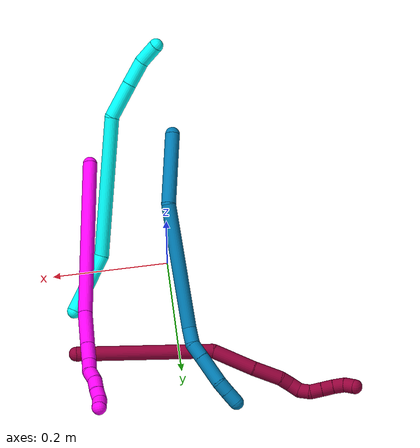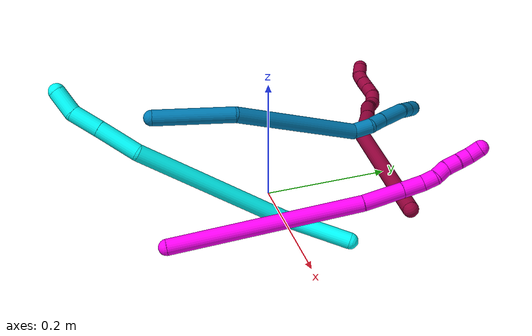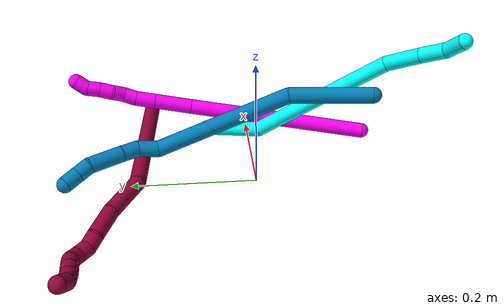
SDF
<sdf version="1.7">
 <world name="default">
  <model name="photoneo_s_sensor">
   <static>1</static>
   <pose>0 0 2 1.57079 1.57079 3.14159</pose>
   <link name="link">
    <inertial><mass>0.1</mass></inertial>
    <sensor name="sensor" type="depth">
     <update_rate>30</update_rate>
     <camera>
      <horizontal_fov>1.22</horizontal_fov>
      <image><width>1920</width><height>1200</height><format>B8G8R8</format></image>
      <clip><near>0.1</near><far>4</far></clip>
      <depth_camera><output>points</output></depth_camera>
     </camera>
     <plugin name="camera_plugin" filename="libgazebo_ros_depth_camera.so">
      <baseline>0.2</baseline>
      <alwaysOn>1</alwaysOn>
      <updateRate>0.0</updateRate>
      <cameraName>camera_ir</cameraName>
      <imageTopicName>/camera/color/image_raw</imageTopicName>
      <cameraInfoTopicName>/camera/color/camera_info</cameraInfoTopicName>
      <depthImageTopicName>/camera/depth/image_raw</depthImageTopicName>
      <depthImageCameraInfoTopicName>/camera/depth/camera_info</depthImageCameraInfoTopicName>
      <pointCloudTopicName>/camera/depth/points</pointCloudTopicName>
      <frameName>fr_optical</frameName>
      <pointCloudCutoff>0.1</pointCloudCutoff>
      <pointCloudCutoffMax>2.0</pointCloudCutoffMax>
      <distortionK1>0</distortionK1>
      <distortionK2>0</distortionK2>
      <distortionK3>0</distortionK3>
      <distortionT1>0</distortionT1>
      <distortionT2>0</distortionT2>
      <CxPrime>0</CxPrime>
      <Cx>0</Cx>
      <Cy>0</Cy>
      <focalLength>0</focalLength>
      <hackBaseline>0</hackBaseline>
     </plugin>
    </sensor>
   </link>
  </model>
  <model name="bin">
   <static>1</static>
   <link name="bottom">
    <collision name="collision-bottom">
     <pose>0 0 -0.01 0 -0 0</pose>
     <geometry><box><size>0.8 0.6 0.02</size></box></geometry>
     <surface>
      <friction><ode><mu>100</mu><mu2>100</mu2></ode></friction>
      <contact><collide_bitmask>65535</collide_bitmask></contact>
     </surface>
    </collision>
   </link>
   <link name="west_wall">
    <collision name="collision-west_wall">
     <pose>-0.41 0 0.1 0 -0 0</pose>
     <geometry><box><size>0.02 0.6 0.2</size></box></geometry>
     <surface>
      <friction><ode><mu>100</mu><mu2>100</mu2></ode></friction>
      <contact><collide_bitmask>65535</collide_bitmask></contact>
     </surface>
    </collision>
   </link>
   <link name="east_wall">
    <collision name="collision-east_wall">
     <pose>0.41 0 0.1 0 -0 0</pose>
     <geometry><box><size>0.02 0.6 0.2</size></box></geometry>
     <surface>
      <friction><ode><mu>100</mu><mu2>100</mu2></ode></friction>
      <contact><collide_bitmask>65535</collide_bitmask></contact>
     </surface>
    </collision>
   </link>
   <link name="south_wall">
    <collision name="collision-south_wall">
     <pose>0 -0.31 0.1 0 -0 0</pose>
     <geometry><box><size>0.8 0.02 0.2</size></box></geometry>
     <surface>
      <friction><ode><mu>100</mu><mu2>100</mu2></ode></friction>
      <contact><collide_bitmask>65535</collide_bitmask></contact>
     </surface>
    </collision>
   </link>
   <link name="north_wall">
    <collision name="collision-north_wall">
     <pose>0 0.31 0.1 0 -0 0</pose>
     <geometry><box><size>0.8 0.02 0.2</size></box></geometry>
     <surface>
      <friction><ode><mu>100</mu><mu2>100</mu2></ode></friction>
      <contact><collide_bitmask>65535</collide_bitmask></contact>
     </surface>
    </collision>
   </link>
  </model>
  <model name="3">
   <static>0</static>
   <link name="3">
    <collision name="collision-cylinder-e_1_1_4">
     <pose>-0.009163 -0.01016 0.052049 0.19277 -0.171099 -0.016583</pose>
     <geometry><cylinder><radius>0.0125</radius><length>0.107634</length></cylinder></geometry>
     <surface>
      <friction><ode><mu>1.16</mu><mu2>1.16</mu2><slip1>0</slip1><slip2>0</slip2></ode></friction>
      <contact><ode><kp>1e+06</kp><kd>1</kd><max_vel>0</max_vel><min_depth>0.001</min_depth></ode></contact>
     </surface>
    </collision>
    <visual name="visual-cylinder-e_1_1_4">
     <pose>-0.009163 -0.01016 0.052049 0.19277 -0.171099 -0.016583</pose>
     <geometry><cylinder><radius>0.0125</radius><length>0.107634</length></cylinder></geometry>
     <material><ambient>0.003922 1 0.996078 1</ambient></material>
    </visual>
    <collision name="collision-cylinder-e_2_4_5">
     <pose>-0.051881 -0.09475 0.195556 0.683113 -0.27723 -0.099107</pose>
     <geometry><cylinder><radius>0.0125</radius><length>0.245197</length></cylinder></geometry>
     <surface>
      <friction><ode><mu>1.16</mu><mu2>1.16</mu2><slip1>0</slip1><slip2>0</slip2></ode></friction>
      <contact><ode><kp>1e+06</kp><kd>1</kd><max_vel>0</max_vel><min_depth>0.001</min_depth></ode></contact>
     </surface>
    </collision>
    <visual name="visual-cylinder-e_2_4_5">
     <pose>-0.051881 -0.09475 0.195556 0.683113 -0.27723 -0.099107</pose>
     <geometry><cylinder><radius>0.0125</radius><length>0.245197</length></cylinder></geometry>
     <material><ambient>0.003922 1 0.996078 1</ambient></material>
    </visual>
    <collision name="collision-cylinder-e_3_5_6">
     <pose>-0.085539 -0.18046 0.316908 0.360795 -0.00326 -0.000595</pose>
     <geometry><cylinder><radius>0.0125</radius><length>0.063903</length></cylinder></geometry>
     <surface>
      <friction><ode><mu>1.16</mu><mu2>1.16</mu2><slip1>0</slip1><slip2>0</slip2></ode></friction>
      <contact><ode><kp>1e+06</kp><kd>1</kd><max_vel>0</max_vel><min_depth>0.001</min_depth></ode></contact>
     </surface>
    </collision>
    <visual name="visual-cylinder-e_3_5_6">
     <pose>-0.085539 -0.18046 0.316908 0.360795 -0.00326 -0.000595</pose>
     <geometry><cylinder><radius>0.0125</radius><length>0.063903</length></cylinder></geometry>
     <material><ambient>0.003922 1 0.996078 1</ambient></material>
    </visual>
    <collision name="collision-cylinder-e_4_6_7">
     <pose>-0.08587 -0.198993 0.367672 0.334506 -0.010249 -0.00173</pose>
     <geometry><cylinder><radius>0.0125</radius><length>0.04419</length></cylinder></geometry>
     <surface>
      <friction><ode><mu>1.16</mu><mu2>1.16</mu2><slip1>0</slip1><slip2>0</slip2></ode></friction>
      <contact><ode><kp>1e+06</kp><kd>1</kd><max_vel>0</max_vel><min_depth>0.001</min_depth></ode></contact>
     </surface>
    </collision>
    <visual name="visual-cylinder-e_4_6_7">
     <pose>-0.08587 -0.198993 0.367672 0.334506 -0.010249 -0.00173</pose>
     <geometry><cylinder><radius>0.0125</radius><length>0.04419</length></cylinder></geometry>
     <material><ambient>0.003922 1 0.996078 1</ambient></material>
    </visual>
    <collision name="collision-cylinder-e_5_7_2">
     <pose>-0.079402 -0.2144 0.404986 0.46028 0.349691 0.082727</pose>
     <geometry><cylinder><radius>0.0125</radius><length>0.039076</length></cylinder></geometry>
     <surface>
      <friction><ode><mu>1.16</mu><mu2>1.16</mu2><slip1>0</slip1><slip2>0</slip2></ode></friction>
      <contact><ode><kp>1e+06</kp><kd>1</kd><max_vel>0</max_vel><min_depth>0.001</min_depth></ode></contact>
     </surface>
    </collision>
    <visual name="visual-cylinder-e_5_7_2">
     <pose>-0.079402 -0.2144 0.404986 0.46028 0.349691 0.082727</pose>
     <geometry><cylinder><radius>0.0125</radius><length>0.039076</length></cylinder></geometry>
     <material><ambient>0.003922 1 0.996078 1</ambient></material>
    </visual>
    <collision name="collision-sphere-2">
     <pose>-0.072709 -0.222553 0.421431 0 -0 0</pose>
     <geometry><sphere><radius>0.0125</radius></sphere></geometry>
     <surface>
      <friction><ode><mu>1.16</mu><mu2>1.16</mu2><slip1>0</slip1><slip2>0</slip2></ode></friction>
      <contact><ode><kp>1e+06</kp><kd>1</kd><max_vel>0</max_vel><min_depth>0.001</min_depth></ode></contact>
     </surface>
    </collision>
    <visual name="visual-sphere-2">
     <pose>-0.072709 -0.222553 0.421431 0 -0 0</pose>
     <geometry><sphere><radius>0.0125</radius></sphere></geometry>
     <material><ambient>0.003922 1 0.996078 1</ambient></material>
    </visual>
    <collision name="collision-sphere-7">
     <pose>-0.086096 -0.206247 0.388541 0 -0 0</pose>
     <geometry><sphere><radius>0.0125</radius></sphere></geometry>
     <surface>
      <friction><ode><mu>1.16</mu><mu2>1.16</mu2><slip1>0</slip1><slip2>0</slip2></ode></friction>
      <contact><ode><kp>1e+06</kp><kd>1</kd><max_vel>0</max_vel><min_depth>0.001</min_depth></ode></contact>
     </surface>
    </collision>
    <visual name="visual-sphere-7">
     <pose>-0.086096 -0.206247 0.388541 0 -0 0</pose>
     <geometry><sphere><radius>0.0125</radius></sphere></geometry>
     <material><ambient>0.003922 1 0.996078 1</ambient></material>
    </visual>
    <collision name="collision-sphere-6">
     <pose>-0.085643 -0.191739 0.346802 0 -0 0</pose>
     <geometry><sphere><radius>0.0125</radius></sphere></geometry>
     <surface>
      <friction><ode><mu>1.16</mu><mu2>1.16</mu2><slip1>0</slip1><slip2>0</slip2></ode></friction>
      <contact><ode><kp>1e+06</kp><kd>1</kd><max_vel>0</max_vel><min_depth>0.001</min_depth></ode></contact>
     </surface>
    </collision>
    <visual name="visual-sphere-6">
     <pose>-0.085643 -0.191739 0.346802 0 -0 0</pose>
     <geometry><sphere><radius>0.0125</radius></sphere></geometry>
     <material><ambient>0.003922 1 0.996078 1</ambient></material>
    </visual>
    <collision name="collision-sphere-5">
     <pose>-0.085435 -0.169181 0.287014 0 -0 0</pose>
     <geometry><sphere><radius>0.0125</radius></sphere></geometry>
     <surface>
      <friction><ode><mu>1.16</mu><mu2>1.16</mu2><slip1>0</slip1><slip2>0</slip2></ode></friction>
      <contact><ode><kp>1e+06</kp><kd>1</kd><max_vel>0</max_vel><min_depth>0.001</min_depth></ode></contact>
     </surface>
    </collision>
    <visual name="visual-sphere-5">
     <pose>-0.085435 -0.169181 0.287014 0 -0 0</pose>
     <geometry><sphere><radius>0.0125</radius></sphere></geometry>
     <material><ambient>0.003922 1 0.996078 1</ambient></material>
    </visual>
    <collision name="collision-sphere-1">
     <geometry><sphere><radius>0.0125</radius></sphere></geometry>
     <surface>
      <friction><ode><mu>1.16</mu><mu2>1.16</mu2><slip1>0</slip1><slip2>0</slip2></ode></friction>
      <contact><ode><kp>1e+06</kp><kd>1</kd><max_vel>0</max_vel><min_depth>0.001</min_depth></ode></contact>
     </surface>
    </collision>
    <visual name="visual-sphere-1">
     <geometry><sphere><radius>0.0125</radius></sphere></geometry>
     <material><ambient>0.003922 1 0.996078 1</ambient></material>
    </visual>
    <collision name="collision-sphere-4">
     <pose>-0.018326 -0.020319 0.104098 0 -0 0</pose>
     <geometry><sphere><radius>0.0125</radius></sphere></geometry>
     <surface>
      <friction><ode><mu>1.16</mu><mu2>1.16</mu2><slip1>0</slip1><slip2>0</slip2></ode></friction>
      <contact><ode><kp>1e+06</kp><kd>1</kd><max_vel>0</max_vel><min_depth>0.001</min_depth></ode></contact>
     </surface>
    </collision>
    <visual name="visual-sphere-4">
     <pose>-0.018326 -0.020319 0.104098 0 -0 0</pose>
     <geometry><sphere><radius>0.0125</radius></sphere></geometry>
     <material><ambient>0.003922 1 0.996078 1</ambient></material>
    </visual>
    <inertial>
     <pose>-0.052142 -0.106059 0.211752 0 -0 0</pose>
     <mass>0.5</mass>
     <inertia>
      <ixx>0.001206</ixx>
      <ixy>0</ixy>
      <ixz>0</ixz>
      <iyy>0.000983</iyy>
      <iyz>0</iyz>
      <izz>0.001174</izz>
     </inertia>
    </inertial>
   </link>
   <pose>0.17103 0.07193 0.012211 -1.4574 -0.384732 2.27096</pose>
  </model>
  <model name="8">
   <static>0</static>
   <link name="8">
    <collision name="collision-cylinder-e_1_1_4">
     <pose>-0.117539 0.00147 0.003242 -0.4257 -1.54052 0.413367</pose>
     <geometry><cylinder><radius>0.0125</radius><length>0.235185</length></cylinder></geometry>
     <surface>
      <friction><ode><mu>1.16</mu><mu2>1.16</mu2><slip1>0</slip1><slip2>0</slip2></ode></friction>
      <contact><ode><kp>1e+06</kp><kd>1</kd><max_vel>0</max_vel><min_depth>0.001</min_depth></ode></contact>
     </surface>
    </collision>
    <visual name="visual-cylinder-e_1_1_4">
     <pose>-0.117539 0.00147 0.003242 -0.4257 -1.54052 0.413367</pose>
     <geometry><cylinder><radius>0.0125</radius><length>0.235185</length></cylinder></geometry>
     <material><ambient>0.584314 0 0.227451 1</ambient></material>
    </visual>
    <collision name="collision-cylinder-e_2_4_5">
     <pose>-0.269213 0.016786 -0.001181 -2.07641 -1.13666 1.6509</pose>
     <geometry><cylinder><radius>0.0125</radius><length>0.075253</length></cylinder></geometry>
     <surface>
      <friction><ode><mu>1.16</mu><mu2>1.16</mu2><slip1>0</slip1><slip2>0</slip2></ode></friction>
      <contact><ode><kp>1e+06</kp><kd>1</kd><max_vel>0</max_vel><min_depth>0.001</min_depth></ode></contact>
     </surface>
    </collision>
    <visual name="visual-cylinder-e_2_4_5">
     <pose>-0.269213 0.016786 -0.001181 -2.07641 -1.13666 1.6509</pose>
     <geometry><cylinder><radius>0.0125</radius><length>0.075253</length></cylinder></geometry>
     <material><ambient>0.584314 0 0.227451 1</ambient></material>
    </visual>
    <collision name="collision-cylinder-e_3_5_6">
     <pose>-0.326534 0.036688 -0.015156 -2.37669 -1.21011 2.08796</pose>
     <geometry><cylinder><radius>0.0125</radius><length>0.049559</length></cylinder></geometry>
     <surface>
      <friction><ode><mu>1.16</mu><mu2>1.16</mu2><slip1>0</slip1><slip2>0</slip2></ode></friction>
      <contact><ode><kp>1e+06</kp><kd>1</kd><max_vel>0</max_vel><min_depth>0.001</min_depth></ode></contact>
     </surface>
    </collision>
    <visual name="visual-cylinder-e_3_5_6">
     <pose>-0.326534 0.036688 -0.015156 -2.37669 -1.21011 2.08796</pose>
     <geometry><cylinder><radius>0.0125</radius><length>0.049559</length></cylinder></geometry>
     <material><ambient>0.584314 0 0.227451 1</ambient></material>
    </visual>
    <collision name="collision-cylinder-e_4_6_7">
     <pose>-0.35811 0.045044 -0.026397 -2.70529 -0.995465 2.36687</pose>
     <geometry><cylinder><radius>0.0125</radius><length>0.020003</length></cylinder></geometry>
     <surface>
      <friction><ode><mu>1.16</mu><mu2>1.16</mu2><slip1>0</slip1><slip2>0</slip2></ode></friction>
      <contact><ode><kp>1e+06</kp><kd>1</kd><max_vel>0</max_vel><min_depth>0.001</min_depth></ode></contact>
     </surface>
    </collision>
    <visual name="visual-cylinder-e_4_6_7">
     <pose>-0.35811 0.045044 -0.026397 -2.70529 -0.995465 2.36687</pose>
     <geometry><cylinder><radius>0.0125</radius><length>0.020003</length></cylinder></geometry>
     <material><ambient>0.584314 0 0.227451 1</ambient></material>
    </visual>
    <collision name="collision-cylinder-e_5_7_8">
     <pose>-0.374579 0.052604 -0.033992 -2.03932 -0.940233 1.38155</pose>
     <geometry><cylinder><radius>0.0125</radius><length>0.020001</length></cylinder></geometry>
     <surface>
      <friction><ode><mu>1.16</mu><mu2>1.16</mu2><slip1>0</slip1><slip2>0</slip2></ode></friction>
      <contact><ode><kp>1e+06</kp><kd>1</kd><max_vel>0</max_vel><min_depth>0.001</min_depth></ode></contact>
     </surface>
    </collision>
    <visual name="visual-cylinder-e_5_7_8">
     <pose>-0.374579 0.052604 -0.033992 -2.03932 -0.940233 1.38155</pose>
     <geometry><cylinder><radius>0.0125</radius><length>0.020001</length></cylinder></geometry>
     <material><ambient>0.584314 0 0.227451 1</ambient></material>
    </visual>
    <collision name="collision-cylinder-e_6_8_9">
     <pose>-0.391619 0.061737 -0.03449 -1.06112 -1.11127 0.698632</pose>
     <geometry><cylinder><radius>0.0125</radius><length>0.02</length></cylinder></geometry>
     <surface>
      <friction><ode><mu>1.16</mu><mu2>1.16</mu2><slip1>0</slip1><slip2>0</slip2></ode></friction>
      <contact><ode><kp>1e+06</kp><kd>1</kd><max_vel>0</max_vel><min_depth>0.001</min_depth></ode></contact>
     </surface>
    </collision>
    <visual name="visual-cylinder-e_6_8_9">
     <pose>-0.391619 0.061737 -0.03449 -1.06112 -1.11127 0.698632</pose>
     <geometry><cylinder><radius>0.0125</radius><length>0.02</length></cylinder></geometry>
     <material><ambient>0.584314 0 0.227451 1</ambient></material>
    </visual>
    <collision name="collision-cylinder-e_7_9_10">
     <pose>-0.410187 0.065328 -0.02956 0.100833 -1.28907 -0.075816</pose>
     <geometry><cylinder><radius>0.0125</radius><length>0.02</length></cylinder></geometry>
     <surface>
      <friction><ode><mu>1.16</mu><mu2>1.16</mu2><slip1>0</slip1><slip2>0</slip2></ode></friction>
      <contact><ode><kp>1e+06</kp><kd>1</kd><max_vel>0</max_vel><min_depth>0.001</min_depth></ode></contact>
     </surface>
    </collision>
    <visual name="visual-cylinder-e_7_9_10">
     <pose>-0.410187 0.065328 -0.02956 0.100833 -1.28907 -0.075816</pose>
     <geometry><cylinder><radius>0.0125</radius><length>0.02</length></cylinder></geometry>
     <material><ambient>0.584314 0 0.227451 1</ambient></material>
    </visual>
    <collision name="collision-cylinder-e_8_10_11">
     <pose>-0.42939 0.064644 -0.024014 0.144282 -1.28599 -0.10818</pose>
     <geometry><cylinder><radius>0.0125</radius><length>0.02</length></cylinder></geometry>
     <surface>
      <friction><ode><mu>1.16</mu><mu2>1.16</mu2><slip1>0</slip1><slip2>0</slip2></ode></friction>
      <contact><ode><kp>1e+06</kp><kd>1</kd><max_vel>0</max_vel><min_depth>0.001</min_depth></ode></contact>
     </surface>
    </collision>
    <visual name="visual-cylinder-e_8_10_11">
     <pose>-0.42939 0.064644 -0.024014 0.144282 -1.28599 -0.10818</pose>
     <geometry><cylinder><radius>0.0125</radius><length>0.02</length></cylinder></geometry>
     <material><ambient>0.584314 0 0.227451 1</ambient></material>
    </visual>
    <collision name="collision-cylinder-e_9_11_12">
     <pose>-0.44864 0.064688 -0.018659 -0.17222 -1.30641 0.13193</pose>
     <geometry><cylinder><radius>0.0125</radius><length>0.02</length></cylinder></geometry>
     <surface>
      <friction><ode><mu>1.16</mu><mu2>1.16</mu2><slip1>0</slip1><slip2>0</slip2></ode></friction>
      <contact><ode><kp>1e+06</kp><kd>1</kd><max_vel>0</max_vel><min_depth>0.001</min_depth></ode></contact>
     </surface>
    </collision>
    <visual name="visual-cylinder-e_9_11_12">
     <pose>-0.44864 0.064688 -0.018659 -0.17222 -1.30641 0.13193</pose>
     <geometry><cylinder><radius>0.0125</radius><length>0.02</length></cylinder></geometry>
     <material><ambient>0.584314 0 0.227451 1</ambient></material>
    </visual>
    <collision name="collision-cylinder-e_10_12_2">
     <pose>-0.466354 0.070259 -0.013124 -1.04685 -0.937636 0.568756</pose>
     <geometry><cylinder><radius>0.0125</radius><length>0.02</length></cylinder></geometry>
     <surface>
      <friction><ode><mu>1.16</mu><mu2>1.16</mu2><slip1>0</slip1><slip2>0</slip2></ode></friction>
      <contact><ode><kp>1e+06</kp><kd>1</kd><max_vel>0</max_vel><min_depth>0.001</min_depth></ode></contact>
     </surface>
    </collision>
    <visual name="visual-cylinder-e_10_12_2">
     <pose>-0.466354 0.070259 -0.013124 -1.04685 -0.937636 0.568756</pose>
     <geometry><cylinder><radius>0.0125</radius><length>0.02</length></cylinder></geometry>
     <material><ambient>0.584314 0 0.227451 1</ambient></material>
    </visual>
    <collision name="collision-sphere-2">
     <pose>-0.474416 0.075382 -0.010164 0 -0 0</pose>
     <geometry><sphere><radius>0.0125</radius></sphere></geometry>
     <surface>
      <friction><ode><mu>1.16</mu><mu2>1.16</mu2><slip1>0</slip1><slip2>0</slip2></ode></friction>
      <contact><ode><kp>1e+06</kp><kd>1</kd><max_vel>0</max_vel><min_depth>0.001</min_depth></ode></contact>
     </surface>
    </collision>
    <visual name="visual-sphere-2">
     <pose>-0.474416 0.075382 -0.010164 0 -0 0</pose>
     <geometry><sphere><radius>0.0125</radius></sphere></geometry>
     <material><ambient>0.584314 0 0.227451 1</ambient></material>
    </visual>
    <collision name="collision-sphere-12">
     <pose>-0.458292 0.065136 -0.016084 0 -0 0</pose>
     <geometry><sphere><radius>0.0125</radius></sphere></geometry>
     <surface>
      <friction><ode><mu>1.16</mu><mu2>1.16</mu2><slip1>0</slip1><slip2>0</slip2></ode></friction>
      <contact><ode><kp>1e+06</kp><kd>1</kd><max_vel>0</max_vel><min_depth>0.001</min_depth></ode></contact>
     </surface>
    </collision>
    <visual name="visual-sphere-12">
     <pose>-0.458292 0.065136 -0.016084 0 -0 0</pose>
     <geometry><sphere><radius>0.0125</radius></sphere></geometry>
     <material><ambient>0.584314 0 0.227451 1</ambient></material>
    </visual>
    <collision name="collision-sphere-11">
     <pose>-0.438987 0.06424 -0.021233 0 -0 0</pose>
     <geometry><sphere><radius>0.0125</radius></sphere></geometry>
     <surface>
      <friction><ode><mu>1.16</mu><mu2>1.16</mu2><slip1>0</slip1><slip2>0</slip2></ode></friction>
      <contact><ode><kp>1e+06</kp><kd>1</kd><max_vel>0</max_vel><min_depth>0.001</min_depth></ode></contact>
     </surface>
    </collision>
    <visual name="visual-sphere-11">
     <pose>-0.438987 0.06424 -0.021233 0 -0 0</pose>
     <geometry><sphere><radius>0.0125</radius></sphere></geometry>
     <material><ambient>0.584314 0 0.227451 1</ambient></material>
    </visual>
    <collision name="collision-sphere-10">
     <pose>-0.419793 0.065048 -0.026794 0 -0 0</pose>
     <geometry><sphere><radius>0.0125</radius></sphere></geometry>
     <surface>
      <friction><ode><mu>1.16</mu><mu2>1.16</mu2><slip1>0</slip1><slip2>0</slip2></ode></friction>
      <contact><ode><kp>1e+06</kp><kd>1</kd><max_vel>0</max_vel><min_depth>0.001</min_depth></ode></contact>
     </surface>
    </collision>
    <visual name="visual-sphere-10">
     <pose>-0.419793 0.065048 -0.026794 0 -0 0</pose>
     <geometry><sphere><radius>0.0125</radius></sphere></geometry>
     <material><ambient>0.584314 0 0.227451 1</ambient></material>
    </visual>
    <collision name="collision-sphere-9">
     <pose>-0.400581 0.065608 -0.032326 0 -0 0</pose>
     <geometry><sphere><radius>0.0125</radius></sphere></geometry>
     <surface>
      <friction><ode><mu>1.16</mu><mu2>1.16</mu2><slip1>0</slip1><slip2>0</slip2></ode></friction>
      <contact><ode><kp>1e+06</kp><kd>1</kd><max_vel>0</max_vel><min_depth>0.001</min_depth></ode></contact>
     </surface>
    </collision>
    <visual name="visual-sphere-9">
     <pose>-0.400581 0.065608 -0.032326 0 -0 0</pose>
     <geometry><sphere><radius>0.0125</radius></sphere></geometry>
     <material><ambient>0.584314 0 0.227451 1</ambient></material>
    </visual>
    <collision name="collision-sphere-4">
     <pose>-0.235077 0.00294 0.006484 0 -0 0</pose>
     <geometry><sphere><radius>0.0125</radius></sphere></geometry>
     <surface>
      <friction><ode><mu>1.16</mu><mu2>1.16</mu2><slip1>0</slip1><slip2>0</slip2></ode></friction>
      <contact><ode><kp>1e+06</kp><kd>1</kd><max_vel>0</max_vel><min_depth>0.001</min_depth></ode></contact>
     </surface>
    </collision>
    <visual name="visual-sphere-4">
     <pose>-0.235077 0.00294 0.006484 0 -0 0</pose>
     <geometry><sphere><radius>0.0125</radius></sphere></geometry>
     <material><ambient>0.584314 0 0.227451 1</ambient></material>
    </visual>
    <collision name="collision-sphere-1">
     <geometry><sphere><radius>0.0125</radius></sphere></geometry>
     <surface>
      <friction><ode><mu>1.16</mu><mu2>1.16</mu2><slip1>0</slip1><slip2>0</slip2></ode></friction>
      <contact><ode><kp>1e+06</kp><kd>1</kd><max_vel>0</max_vel><min_depth>0.001</min_depth></ode></contact>
     </surface>
    </collision>
    <visual name="visual-sphere-1">
     <geometry><sphere><radius>0.0125</radius></sphere></geometry>
     <material><ambient>0.584314 0 0.227451 1</ambient></material>
    </visual>
    <collision name="collision-sphere-8">
     <pose>-0.382656 0.057865 -0.036654 0 -0 0</pose>
     <geometry><sphere><radius>0.0125</radius></sphere></geometry>
     <surface>
      <friction><ode><mu>1.16</mu><mu2>1.16</mu2><slip1>0</slip1><slip2>0</slip2></ode></friction>
      <contact><ode><kp>1e+06</kp><kd>1</kd><max_vel>0</max_vel><min_depth>0.001</min_depth></ode></contact>
     </surface>
    </collision>
    <visual name="visual-sphere-8">
     <pose>-0.382656 0.057865 -0.036654 0 -0 0</pose>
     <geometry><sphere><radius>0.0125</radius></sphere></geometry>
     <material><ambient>0.584314 0 0.227451 1</ambient></material>
    </visual>
    <collision name="collision-sphere-5">
     <pose>-0.303349 0.030633 -0.008847 0 -0 0</pose>
     <geometry><sphere><radius>0.0125</radius></sphere></geometry>
     <surface>
      <friction><ode><mu>1.16</mu><mu2>1.16</mu2><slip1>0</slip1><slip2>0</slip2></ode></friction>
      <contact><ode><kp>1e+06</kp><kd>1</kd><max_vel>0</max_vel><min_depth>0.001</min_depth></ode></contact>
     </surface>
    </collision>
    <visual name="visual-sphere-5">
     <pose>-0.303349 0.030633 -0.008847 0 -0 0</pose>
     <geometry><sphere><radius>0.0125</radius></sphere></geometry>
     <material><ambient>0.584314 0 0.227451 1</ambient></material>
    </visual>
    <collision name="collision-sphere-6">
     <pose>-0.349719 0.042744 -0.021465 0 -0 0</pose>
     <geometry><sphere><radius>0.0125</radius></sphere></geometry>
     <surface>
      <friction><ode><mu>1.16</mu><mu2>1.16</mu2><slip1>0</slip1><slip2>0</slip2></ode></friction>
      <contact><ode><kp>1e+06</kp><kd>1</kd><max_vel>0</max_vel><min_depth>0.001</min_depth></ode></contact>
     </surface>
    </collision>
    <visual name="visual-sphere-6">
     <pose>-0.349719 0.042744 -0.021465 0 -0 0</pose>
     <geometry><sphere><radius>0.0125</radius></sphere></geometry>
     <material><ambient>0.584314 0 0.227451 1</ambient></material>
    </visual>
    <collision name="collision-sphere-7">
     <pose>-0.366502 0.047343 -0.031329 0 -0 0</pose>
     <geometry><sphere><radius>0.0125</radius></sphere></geometry>
     <surface>
      <friction><ode><mu>1.16</mu><mu2>1.16</mu2><slip1>0</slip1><slip2>0</slip2></ode></friction>
      <contact><ode><kp>1e+06</kp><kd>1</kd><max_vel>0</max_vel><min_depth>0.001</min_depth></ode></contact>
     </surface>
    </collision>
    <visual name="visual-sphere-7">
     <pose>-0.366502 0.047343 -0.031329 0 -0 0</pose>
     <geometry><sphere><radius>0.0125</radius></sphere></geometry>
     <material><ambient>0.584314 0 0.227451 1</ambient></material>
    </visual>
    <inertial>
     <pose>-0.243328 0.023827 -0.007365 0 -0 0</pose>
     <mass>0.5</mass>
     <inertia>
      <ixx>2.7e-05</ixx>
      <ixy>0</ixy>
      <ixz>0</ixz>
      <iyy>0.001186</iyy>
      <iyz>0</iyz>
      <izz>0.001114</izz>
     </inertia>
    </inertial>
   </link>
   <pose>0.177317 0.165074 0.053376 0.423599 -0.0835 -0.086378</pose>
  </model>
  <model name="9">
   <static>0</static>
   <link name="9">
    <collision name="collision-cylinder-e_1_1_4">
     <pose>0.019382 0.036538 -0.048793 -2.49884 0.307848 -0.872216</pose>
     <geometry><cylinder><radius>0.0125</radius><length>0.127928</length></cylinder></geometry>
     <surface>
      <friction><ode><mu>1.16</mu><mu2>1.16</mu2><slip1>0</slip1><slip2>0</slip2></ode></friction>
      <contact><ode><kp>1e+06</kp><kd>1</kd><max_vel>0</max_vel><min_depth>0.001</min_depth></ode></contact>
     </surface>
    </collision>
    <visual name="visual-cylinder-e_1_1_4">
     <pose>0.019382 0.036538 -0.048793 -2.49884 0.307848 -0.872216</pose>
     <geometry><cylinder><radius>0.0125</radius><length>0.127928</length></cylinder></geometry>
     <material><ambient>0 0.490196 0.709804 1</ambient></material>
    </visual>
    <collision name="collision-cylinder-e_2_4_5">
     <pose>0.053618 0.102962 -0.200081 -2.85787 0.138247 -0.90277</pose>
     <geometry><cylinder><radius>0.0125</radius><length>0.215585</length></cylinder></geometry>
     <surface>
      <friction><ode><mu>1.16</mu><mu2>1.16</mu2><slip1>0</slip1><slip2>0</slip2></ode></friction>
      <contact><ode><kp>1e+06</kp><kd>1</kd><max_vel>0</max_vel><min_depth>0.001</min_depth></ode></contact>
     </surface>
    </collision>
    <visual name="visual-cylinder-e_2_4_5">
     <pose>0.053618 0.102962 -0.200081 -2.85787 0.138247 -0.90277</pose>
     <geometry><cylinder><radius>0.0125</radius><length>0.215585</length></cylinder></geometry>
     <material><ambient>0 0.490196 0.709804 1</ambient></material>
    </visual>
    <collision name="collision-cylinder-e_3_5_6">
     <pose>0.069105 0.143407 -0.314052 -2.39779 0.040571 -0.103934</pose>
     <geometry><cylinder><radius>0.0125</radius><length>0.031213</length></cylinder></geometry>
     <surface>
      <friction><ode><mu>1.16</mu><mu2>1.16</mu2><slip1>0</slip1><slip2>0</slip2></ode></friction>
      <contact><ode><kp>1e+06</kp><kd>1</kd><max_vel>0</max_vel><min_depth>0.001</min_depth></ode></contact>
     </surface>
    </collision>
    <visual name="visual-cylinder-e_3_5_6">
     <pose>0.069105 0.143407 -0.314052 -2.39779 0.040571 -0.103934</pose>
     <geometry><cylinder><radius>0.0125</radius><length>0.031213</length></cylinder></geometry>
     <material><ambient>0 0.490196 0.709804 1</ambient></material>
    </visual>
    <collision name="collision-cylinder-e_4_6_7">
     <pose>0.06525 0.160299 -0.33666 -2.62432 -0.337072 1.14308</pose>
     <geometry><cylinder><radius>0.0125</radius><length>0.027143</length></cylinder></geometry>
     <surface>
      <friction><ode><mu>1.16</mu><mu2>1.16</mu2><slip1>0</slip1><slip2>0</slip2></ode></friction>
      <contact><ode><kp>1e+06</kp><kd>1</kd><max_vel>0</max_vel><min_depth>0.001</min_depth></ode></contact>
     </surface>
    </collision>
    <visual name="visual-cylinder-e_4_6_7">
     <pose>0.06525 0.160299 -0.33666 -2.62432 -0.337072 1.14308</pose>
     <geometry><cylinder><radius>0.0125</radius><length>0.027143</length></cylinder></geometry>
     <material><ambient>0 0.490196 0.709804 1</ambient></material>
    </visual>
    <collision name="collision-cylinder-e_5_7_8">
     <pose>0.052505 0.178195 -0.370123 -2.66382 -0.31723 1.1623</pose>
     <geometry><cylinder><radius>0.0125</radius><length>0.052936</length></cylinder></geometry>
     <surface>
      <friction><ode><mu>1.16</mu><mu2>1.16</mu2><slip1>0</slip1><slip2>0</slip2></ode></friction>
      <contact><ode><kp>1e+06</kp><kd>1</kd><max_vel>0</max_vel><min_depth>0.001</min_depth></ode></contact>
     </surface>
    </collision>
    <visual name="visual-cylinder-e_5_7_8">
     <pose>0.052505 0.178195 -0.370123 -2.66382 -0.31723 1.1623</pose>
     <geometry><cylinder><radius>0.0125</radius><length>0.052936</length></cylinder></geometry>
     <material><ambient>0 0.490196 0.709804 1</ambient></material>
    </visual>
    <collision name="collision-cylinder-e_6_8_9">
     <pose>0.040177 0.191309 -0.40241 -2.98708 -0.384094 2.38382</pose>
     <geometry><cylinder><radius>0.0125</radius><length>0.021735</length></cylinder></geometry>
     <surface>
      <friction><ode><mu>1.16</mu><mu2>1.16</mu2><slip1>0</slip1><slip2>0</slip2></ode></friction>
      <contact><ode><kp>1e+06</kp><kd>1</kd><max_vel>0</max_vel><min_depth>0.001</min_depth></ode></contact>
     </surface>
    </collision>
    <visual name="visual-cylinder-e_6_8_9">
     <pose>0.040177 0.191309 -0.40241 -2.98708 -0.384094 2.38382</pose>
     <geometry><cylinder><radius>0.0125</radius><length>0.021735</length></cylinder></geometry>
     <material><ambient>0 0.490196 0.709804 1</ambient></material>
    </visual>
    <collision name="collision-cylinder-e_7_9_2">
     <pose>0.031466 0.194484 -0.423017 -2.9902 -0.406564 2.43649</pose>
     <geometry><cylinder><radius>0.0125</radius><length>0.02346</length></cylinder></geometry>
     <surface>
      <friction><ode><mu>1.16</mu><mu2>1.16</mu2><slip1>0</slip1><slip2>0</slip2></ode></friction>
      <contact><ode><kp>1e+06</kp><kd>1</kd><max_vel>0</max_vel><min_depth>0.001</min_depth></ode></contact>
     </surface>
    </collision>
    <visual name="visual-cylinder-e_7_9_2">
     <pose>0.031466 0.194484 -0.423017 -2.9902 -0.406564 2.43649</pose>
     <geometry><cylinder><radius>0.0125</radius><length>0.02346</length></cylinder></geometry>
     <material><ambient>0 0.490196 0.709804 1</ambient></material>
    </visual>
    <collision name="collision-sphere-2">
     <pose>0.026827 0.196109 -0.433667 0 -0 0</pose>
     <geometry><sphere><radius>0.0125</radius></sphere></geometry>
     <surface>
      <friction><ode><mu>1.16</mu><mu2>1.16</mu2><slip1>0</slip1><slip2>0</slip2></ode></friction>
      <contact><ode><kp>1e+06</kp><kd>1</kd><max_vel>0</max_vel><min_depth>0.001</min_depth></ode></contact>
     </surface>
    </collision>
    <visual name="visual-sphere-2">
     <pose>0.026827 0.196109 -0.433667 0 -0 0</pose>
     <geometry><sphere><radius>0.0125</radius></sphere></geometry>
     <material><ambient>0 0.490196 0.709804 1</ambient></material>
    </visual>
    <collision name="collision-sphere-9">
     <pose>0.036104 0.192859 -0.412366 0 -0 0</pose>
     <geometry><sphere><radius>0.0125</radius></sphere></geometry>
     <surface>
      <friction><ode><mu>1.16</mu><mu2>1.16</mu2><slip1>0</slip1><slip2>0</slip2></ode></friction>
      <contact><ode><kp>1e+06</kp><kd>1</kd><max_vel>0</max_vel><min_depth>0.001</min_depth></ode></contact>
     </surface>
    </collision>
    <visual name="visual-sphere-9">
     <pose>0.036104 0.192859 -0.412366 0 -0 0</pose>
     <geometry><sphere><radius>0.0125</radius></sphere></geometry>
     <material><ambient>0 0.490196 0.709804 1</ambient></material>
    </visual>
    <collision name="collision-sphere-4">
     <pose>0.038763 0.073075 -0.097586 0 -0 0</pose>
     <geometry><sphere><radius>0.0125</radius></sphere></geometry>
     <surface>
      <friction><ode><mu>1.16</mu><mu2>1.16</mu2><slip1>0</slip1><slip2>0</slip2></ode></friction>
      <contact><ode><kp>1e+06</kp><kd>1</kd><max_vel>0</max_vel><min_depth>0.001</min_depth></ode></contact>
     </surface>
    </collision>
    <visual name="visual-sphere-4">
     <pose>0.038763 0.073075 -0.097586 0 -0 0</pose>
     <geometry><sphere><radius>0.0125</radius></sphere></geometry>
     <material><ambient>0 0.490196 0.709804 1</ambient></material>
    </visual>
    <collision name="collision-sphere-1">
     <geometry><sphere><radius>0.0125</radius></sphere></geometry>
     <surface>
      <friction><ode><mu>1.16</mu><mu2>1.16</mu2><slip1>0</slip1><slip2>0</slip2></ode></friction>
      <contact><ode><kp>1e+06</kp><kd>1</kd><max_vel>0</max_vel><min_depth>0.001</min_depth></ode></contact>
     </surface>
    </collision>
    <visual name="visual-sphere-1">
     <geometry><sphere><radius>0.0125</radius></sphere></geometry>
     <material><ambient>0 0.490196 0.709804 1</ambient></material>
    </visual>
    <collision name="collision-sphere-8">
     <pose>0.044249 0.189758 -0.392454 0 -0 0</pose>
     <geometry><sphere><radius>0.0125</radius></sphere></geometry>
     <surface>
      <friction><ode><mu>1.16</mu><mu2>1.16</mu2><slip1>0</slip1><slip2>0</slip2></ode></friction>
      <contact><ode><kp>1e+06</kp><kd>1</kd><max_vel>0</max_vel><min_depth>0.001</min_depth></ode></contact>
     </surface>
    </collision>
    <visual name="visual-sphere-8">
     <pose>0.044249 0.189758 -0.392454 0 -0 0</pose>
     <geometry><sphere><radius>0.0125</radius></sphere></geometry>
     <material><ambient>0 0.490196 0.709804 1</ambient></material>
    </visual>
    <collision name="collision-sphere-5">
     <pose>0.068472 0.132848 -0.302577 0 -0 0</pose>
     <geometry><sphere><radius>0.0125</radius></sphere></geometry>
     <surface>
      <friction><ode><mu>1.16</mu><mu2>1.16</mu2><slip1>0</slip1><slip2>0</slip2></ode></friction>
      <contact><ode><kp>1e+06</kp><kd>1</kd><max_vel>0</max_vel><min_depth>0.001</min_depth></ode></contact>
     </surface>
    </collision>
    <visual name="visual-sphere-5">
     <pose>0.068472 0.132848 -0.302577 0 -0 0</pose>
     <geometry><sphere><radius>0.0125</radius></sphere></geometry>
     <material><ambient>0 0.490196 0.709804 1</ambient></material>
    </visual>
    <collision name="collision-sphere-6">
     <pose>0.069738 0.153965 -0.325527 0 -0 0</pose>
     <geometry><sphere><radius>0.0125</radius></sphere></geometry>
     <surface>
      <friction><ode><mu>1.16</mu><mu2>1.16</mu2><slip1>0</slip1><slip2>0</slip2></ode></friction>
      <contact><ode><kp>1e+06</kp><kd>1</kd><max_vel>0</max_vel><min_depth>0.001</min_depth></ode></contact>
     </surface>
    </collision>
    <visual name="visual-sphere-6">
     <pose>0.069738 0.153965 -0.325527 0 -0 0</pose>
     <geometry><sphere><radius>0.0125</radius></sphere></geometry>
     <material><ambient>0 0.490196 0.709804 1</ambient></material>
    </visual>
    <collision name="collision-sphere-7">
     <pose>0.060761 0.166632 -0.347792 0 -0 0</pose>
     <geometry><sphere><radius>0.0125</radius></sphere></geometry>
     <surface>
      <friction><ode><mu>1.16</mu><mu2>1.16</mu2><slip1>0</slip1><slip2>0</slip2></ode></friction>
      <contact><ode><kp>1e+06</kp><kd>1</kd><max_vel>0</max_vel><min_depth>0.001</min_depth></ode></contact>
     </surface>
    </collision>
    <visual name="visual-sphere-7">
     <pose>0.060761 0.166632 -0.347792 0 -0 0</pose>
     <geometry><sphere><radius>0.0125</radius></sphere></geometry>
     <material><ambient>0 0.490196 0.709804 1</ambient></material>
    </visual>
    <inertial>
     <pose>0.044715 0.107704 -0.21316 0 -0 0</pose>
     <mass>0.5</mass>
     <inertia>
      <ixx>-0.000133</ixx>
      <ixy>0</ixy>
      <ixz>0</ixz>
      <iyy>-0.001302</iyy>
      <iyz>0</iyz>
      <izz>-0.000545</izz>
     </inertia>
    </inertial>
   </link>
   <pose>-0.03251 -0.175086 0.157855 0.943739 0.183688 0.127364</pose>
  </model>
  <model name="10">
   <static>0</static>
   <link name="10">
    <collision name="collision-cylinder-e_1_1_4">
     <pose>0.030102 0.047472 0.138008 -0.3313 0.203407 -0.03412</pose>
     <geometry><cylinder><radius>0.0125</radius><length>0.298033</length></cylinder></geometry>
     <surface>
      <friction><ode><mu>1.16</mu><mu2>1.16</mu2><slip1>0</slip1><slip2>0</slip2></ode></friction>
      <contact><ode><kp>1e+06</kp><kd>1</kd><max_vel>0</max_vel><min_depth>0.001</min_depth></ode></contact>
     </surface>
    </collision>
    <visual name="visual-cylinder-e_1_1_4">
     <pose>0.030102 0.047472 0.138008 -0.3313 0.203407 -0.03412</pose>
     <geometry><cylinder><radius>0.0125</radius><length>0.298033</length></cylinder></geometry>
     <material><ambient>1 0 0.964706 1</ambient></material>
    </visual>
    <collision name="collision-cylinder-e_2_4_5">
     <pose>0.069073 0.102632 0.305197 -0.25762 0.285821 -0.037271</pose>
     <geometry><cylinder><radius>0.0125</radius><length>0.062906</length></cylinder></geometry>
     <surface>
      <friction><ode><mu>1.16</mu><mu2>1.16</mu2><slip1>0</slip1><slip2>0</slip2></ode></friction>
      <contact><ode><kp>1e+06</kp><kd>1</kd><max_vel>0</max_vel><min_depth>0.001</min_depth></ode></contact>
     </surface>
    </collision>
    <visual name="visual-cylinder-e_2_4_5">
     <pose>0.069073 0.102632 0.305197 -0.25762 0.285821 -0.037271</pose>
     <geometry><cylinder><radius>0.0125</radius><length>0.062906</length></cylinder></geometry>
     <material><ambient>1 0 0.964706 1</ambient></material>
    </visual>
    <collision name="collision-cylinder-e_3_5_6">
     <pose>0.082664 0.114159 0.349642 -0.246402 0.291567 -0.036358</pose>
     <geometry><cylinder><radius>0.0125</radius><length>0.032866</length></cylinder></geometry>
     <surface>
      <friction><ode><mu>1.16</mu><mu2>1.16</mu2><slip1>0</slip1><slip2>0</slip2></ode></friction>
      <contact><ode><kp>1e+06</kp><kd>1</kd><max_vel>0</max_vel><min_depth>0.001</min_depth></ode></contact>
     </surface>
    </collision>
    <visual name="visual-cylinder-e_3_5_6">
     <pose>0.082664 0.114159 0.349642 -0.246402 0.291567 -0.036358</pose>
     <geometry><cylinder><radius>0.0125</radius><length>0.032866</length></cylinder></geometry>
     <material><ambient>1 0 0.964706 1</ambient></material>
    </visual>
    <collision name="collision-cylinder-e_4_6_7">
     <pose>0.092091 0.121386 0.374256 -0.347591 0.441742 -0.0788</pose>
     <geometry><cylinder><radius>0.0125</radius><length>0.022</length></cylinder></geometry>
     <surface>
      <friction><ode><mu>1.16</mu><mu2>1.16</mu2><slip1>0</slip1><slip2>0</slip2></ode></friction>
      <contact><ode><kp>1e+06</kp><kd>1</kd><max_vel>0</max_vel><min_depth>0.001</min_depth></ode></contact>
     </surface>
    </collision>
    <visual name="visual-cylinder-e_4_6_7">
     <pose>0.092091 0.121386 0.374256 -0.347591 0.441742 -0.0788</pose>
     <geometry><cylinder><radius>0.0125</radius><length>0.022</length></cylinder></geometry>
     <material><ambient>1 0 0.964706 1</ambient></material>
    </visual>
    <collision name="collision-cylinder-e_5_7_8">
     <pose>0.102622 0.124113 0.392417 0.074834 0.583069 0.022466</pose>
     <geometry><cylinder><radius>0.0125</radius><length>0.021171</length></cylinder></geometry>
     <surface>
      <friction><ode><mu>1.16</mu><mu2>1.16</mu2><slip1>0</slip1><slip2>0</slip2></ode></friction>
      <contact><ode><kp>1e+06</kp><kd>1</kd><max_vel>0</max_vel><min_depth>0.001</min_depth></ode></contact>
     </surface>
    </collision>
    <visual name="visual-cylinder-e_5_7_8">
     <pose>0.102622 0.124113 0.392417 0.074834 0.583069 0.022466</pose>
     <geometry><cylinder><radius>0.0125</radius><length>0.021171</length></cylinder></geometry>
     <material><ambient>1 0 0.964706 1</ambient></material>
    </visual>
    <collision name="collision-cylinder-e_6_8_9">
     <pose>0.113052 0.125582 0.411055 -0.213446 0.429293 -0.046701</pose>
     <geometry><cylinder><radius>0.0125</radius><length>0.022116</length></cylinder></geometry>
     <surface>
      <friction><ode><mu>1.16</mu><mu2>1.16</mu2><slip1>0</slip1><slip2>0</slip2></ode></friction>
      <contact><ode><kp>1e+06</kp><kd>1</kd><max_vel>0</max_vel><min_depth>0.001</min_depth></ode></contact>
     </surface>
    </collision>
    <visual name="visual-cylinder-e_6_8_9">
     <pose>0.113052 0.125582 0.411055 -0.213446 0.429293 -0.046701</pose>
     <geometry><cylinder><radius>0.0125</radius><length>0.022116</length></cylinder></geometry>
     <material><ambient>1 0 0.964706 1</ambient></material>
    </visual>
    <collision name="collision-cylinder-e_7_9_10">
     <pose>0.121448 0.128458 0.430221 -0.079776 0.384664 -0.015543</pose>
     <geometry><cylinder><radius>0.0125</radius><length>0.020218</length></cylinder></geometry>
     <surface>
      <friction><ode><mu>1.16</mu><mu2>1.16</mu2><slip1>0</slip1><slip2>0</slip2></ode></friction>
      <contact><ode><kp>1e+06</kp><kd>1</kd><max_vel>0</max_vel><min_depth>0.001</min_depth></ode></contact>
     </surface>
    </collision>
    <visual name="visual-cylinder-e_7_9_10">
     <pose>0.121448 0.128458 0.430221 -0.079776 0.384664 -0.015543</pose>
     <geometry><cylinder><radius>0.0125</radius><length>0.020218</length></cylinder></geometry>
     <material><ambient>1 0 0.964706 1</ambient></material>
    </visual>
    <collision name="collision-cylinder-e_8_10_2">
     <pose>0.131375 0.13355 0.44667 -0.548585 0.634567 -0.184278</pose>
     <geometry><cylinder><radius>0.0125</radius><length>0.020691</length></cylinder></geometry>
     <surface>
      <friction><ode><mu>1.16</mu><mu2>1.16</mu2><slip1>0</slip1><slip2>0</slip2></ode></friction>
      <contact><ode><kp>1e+06</kp><kd>1</kd><max_vel>0</max_vel><min_depth>0.001</min_depth></ode></contact>
     </surface>
    </collision>
    <visual name="visual-cylinder-e_8_10_2">
     <pose>0.131375 0.13355 0.44667 -0.548585 0.634567 -0.184278</pose>
     <geometry><cylinder><radius>0.0125</radius><length>0.020691</length></cylinder></geometry>
     <material><ambient>1 0 0.964706 1</ambient></material>
    </visual>
    <collision name="collision-sphere-2">
     <pose>0.137508 0.137894 0.453779 0 -0 0</pose>
     <geometry><sphere><radius>0.0125</radius></sphere></geometry>
     <surface>
      <friction><ode><mu>1.16</mu><mu2>1.16</mu2><slip1>0</slip1><slip2>0</slip2></ode></friction>
      <contact><ode><kp>1e+06</kp><kd>1</kd><max_vel>0</max_vel><min_depth>0.001</min_depth></ode></contact>
     </surface>
    </collision>
    <visual name="visual-sphere-2">
     <pose>0.137508 0.137894 0.453779 0 -0 0</pose>
     <geometry><sphere><radius>0.0125</radius></sphere></geometry>
     <material><ambient>1 0 0.964706 1</ambient></material>
    </visual>
    <collision name="collision-sphere-10">
     <pose>0.125242 0.129205 0.439561 0 -0 0</pose>
     <geometry><sphere><radius>0.0125</radius></sphere></geometry>
     <surface>
      <friction><ode><mu>1.16</mu><mu2>1.16</mu2><slip1>0</slip1><slip2>0</slip2></ode></friction>
      <contact><ode><kp>1e+06</kp><kd>1</kd><max_vel>0</max_vel><min_depth>0.001</min_depth></ode></contact>
     </surface>
    </collision>
    <visual name="visual-sphere-10">
     <pose>0.125242 0.129205 0.439561 0 -0 0</pose>
     <geometry><sphere><radius>0.0125</radius></sphere></geometry>
     <material><ambient>1 0 0.964706 1</ambient></material>
    </visual>
    <collision name="collision-sphere-9">
     <pose>0.117655 0.127712 0.420881 0 -0 0</pose>
     <geometry><sphere><radius>0.0125</radius></sphere></geometry>
     <surface>
      <friction><ode><mu>1.16</mu><mu2>1.16</mu2><slip1>0</slip1><slip2>0</slip2></ode></friction>
      <contact><ode><kp>1e+06</kp><kd>1</kd><max_vel>0</max_vel><min_depth>0.001</min_depth></ode></contact>
     </surface>
    </collision>
    <visual name="visual-sphere-9">
     <pose>0.117655 0.127712 0.420881 0 -0 0</pose>
     <geometry><sphere><radius>0.0125</radius></sphere></geometry>
     <material><ambient>1 0 0.964706 1</ambient></material>
    </visual>
    <collision name="collision-sphere-4">
     <pose>0.060205 0.094943 0.276016 0 -0 0</pose>
     <geometry><sphere><radius>0.0125</radius></sphere></geometry>
     <surface>
      <friction><ode><mu>1.16</mu><mu2>1.16</mu2><slip1>0</slip1><slip2>0</slip2></ode></friction>
      <contact><ode><kp>1e+06</kp><kd>1</kd><max_vel>0</max_vel><min_depth>0.001</min_depth></ode></contact>
     </surface>
    </collision>
    <visual name="visual-sphere-4">
     <pose>0.060205 0.094943 0.276016 0 -0 0</pose>
     <geometry><sphere><radius>0.0125</radius></sphere></geometry>
     <material><ambient>1 0 0.964706 1</ambient></material>
    </visual>
    <collision name="collision-sphere-1">
     <geometry><sphere><radius>0.0125</radius></sphere></geometry>
     <surface>
      <friction><ode><mu>1.16</mu><mu2>1.16</mu2><slip1>0</slip1><slip2>0</slip2></ode></friction>
      <contact><ode><kp>1e+06</kp><kd>1</kd><max_vel>0</max_vel><min_depth>0.001</min_depth></ode></contact>
     </surface>
    </collision>
    <visual name="visual-sphere-1">
     <geometry><sphere><radius>0.0125</radius></sphere></geometry>
     <material><ambient>1 0 0.964706 1</ambient></material>
    </visual>
    <collision name="collision-sphere-8">
     <pose>0.10845 0.123452 0.401228 0 -0 0</pose>
     <geometry><sphere><radius>0.0125</radius></sphere></geometry>
     <surface>
      <friction><ode><mu>1.16</mu><mu2>1.16</mu2><slip1>0</slip1><slip2>0</slip2></ode></friction>
      <contact><ode><kp>1e+06</kp><kd>1</kd><max_vel>0</max_vel><min_depth>0.001</min_depth></ode></contact>
     </surface>
    </collision>
    <visual name="visual-sphere-8">
     <pose>0.10845 0.123452 0.401228 0 -0 0</pose>
     <geometry><sphere><radius>0.0125</radius></sphere></geometry>
     <material><ambient>1 0 0.964706 1</ambient></material>
    </visual>
    <collision name="collision-sphere-5">
     <pose>0.077941 0.11032 0.334378 0 -0 0</pose>
     <geometry><sphere><radius>0.0125</radius></sphere></geometry>
     <surface>
      <friction><ode><mu>1.16</mu><mu2>1.16</mu2><slip1>0</slip1><slip2>0</slip2></ode></friction>
      <contact><ode><kp>1e+06</kp><kd>1</kd><max_vel>0</max_vel><min_depth>0.001</min_depth></ode></contact>
     </surface>
    </collision>
    <visual name="visual-sphere-5">
     <pose>0.077941 0.11032 0.334378 0 -0 0</pose>
     <geometry><sphere><radius>0.0125</radius></sphere></geometry>
     <material><ambient>1 0 0.964706 1</ambient></material>
    </visual>
    <collision name="collision-sphere-6">
     <pose>0.087388 0.117999 0.364906 0 -0 0</pose>
     <geometry><sphere><radius>0.0125</radius></sphere></geometry>
     <surface>
      <friction><ode><mu>1.16</mu><mu2>1.16</mu2><slip1>0</slip1><slip2>0</slip2></ode></friction>
      <contact><ode><kp>1e+06</kp><kd>1</kd><max_vel>0</max_vel><min_depth>0.001</min_depth></ode></contact>
     </surface>
    </collision>
    <visual name="visual-sphere-6">
     <pose>0.087388 0.117999 0.364906 0 -0 0</pose>
     <geometry><sphere><radius>0.0125</radius></sphere></geometry>
     <material><ambient>1 0 0.964706 1</ambient></material>
    </visual>
    <collision name="collision-sphere-7">
     <pose>0.096793 0.124773 0.383605 0 -0 0</pose>
     <geometry><sphere><radius>0.0125</radius></sphere></geometry>
     <surface>
      <friction><ode><mu>1.16</mu><mu2>1.16</mu2><slip1>0</slip1><slip2>0</slip2></ode></friction>
      <contact><ode><kp>1e+06</kp><kd>1</kd><max_vel>0</max_vel><min_depth>0.001</min_depth></ode></contact>
     </surface>
    </collision>
    <visual name="visual-sphere-7">
     <pose>0.096793 0.124773 0.383605 0 -0 0</pose>
     <geometry><sphere><radius>0.0125</radius></sphere></geometry>
     <material><ambient>1 0 0.964706 1</ambient></material>
    </visual>
    <inertial>
     <pose>0.055812 0.075584 0.230786 0 -0 0</pose>
     <mass>0.5</mass>
     <inertia>
      <ixx>0.002139</ixx>
      <ixy>0</ixy>
      <ixz>0</ixz>
      <iyy>0.002071</iyy>
      <iyz>0</iyz>
      <izz>-0.001139</izz>
     </inertia>
    </inertial>
   </link>
   <pose>0.112166 -0.194559 0.022987 2.05938 -1.21533 2.78305</pose>
  </model>
 </world>
</sdf>
